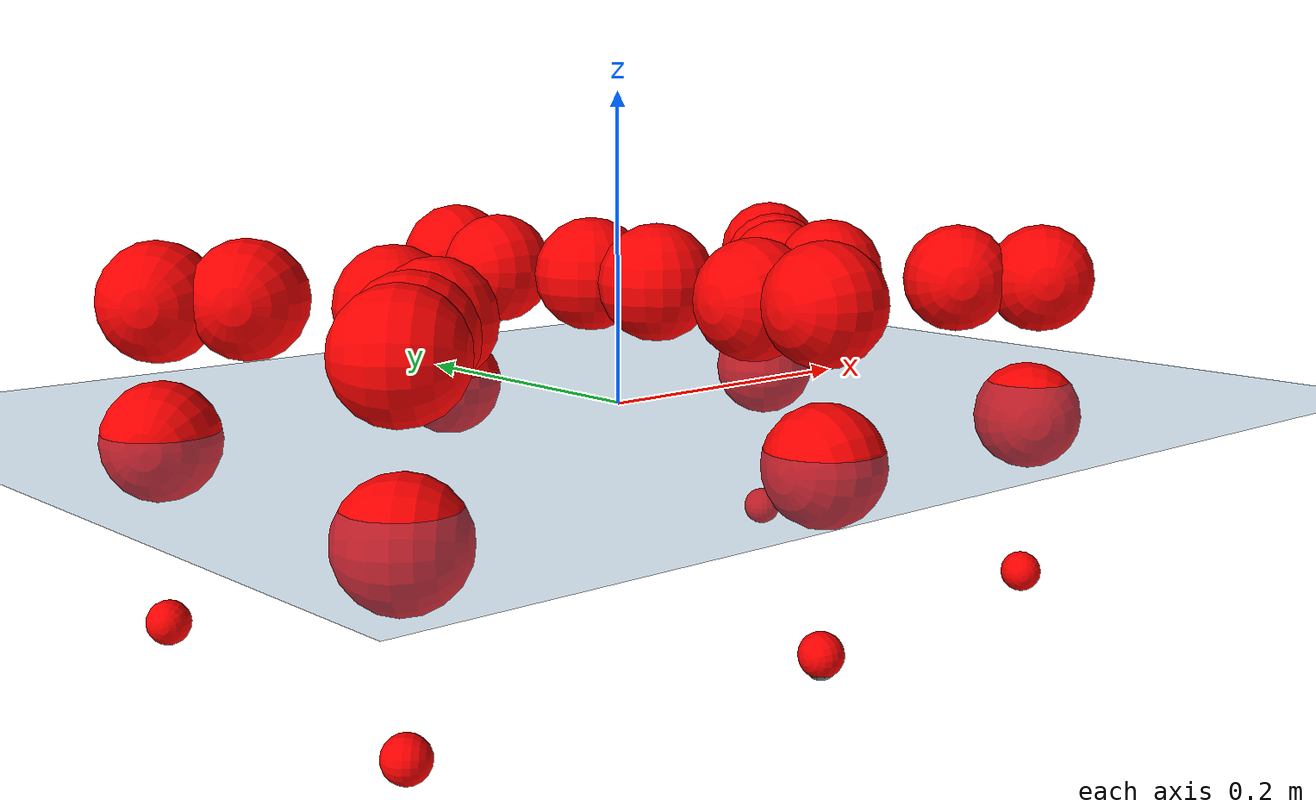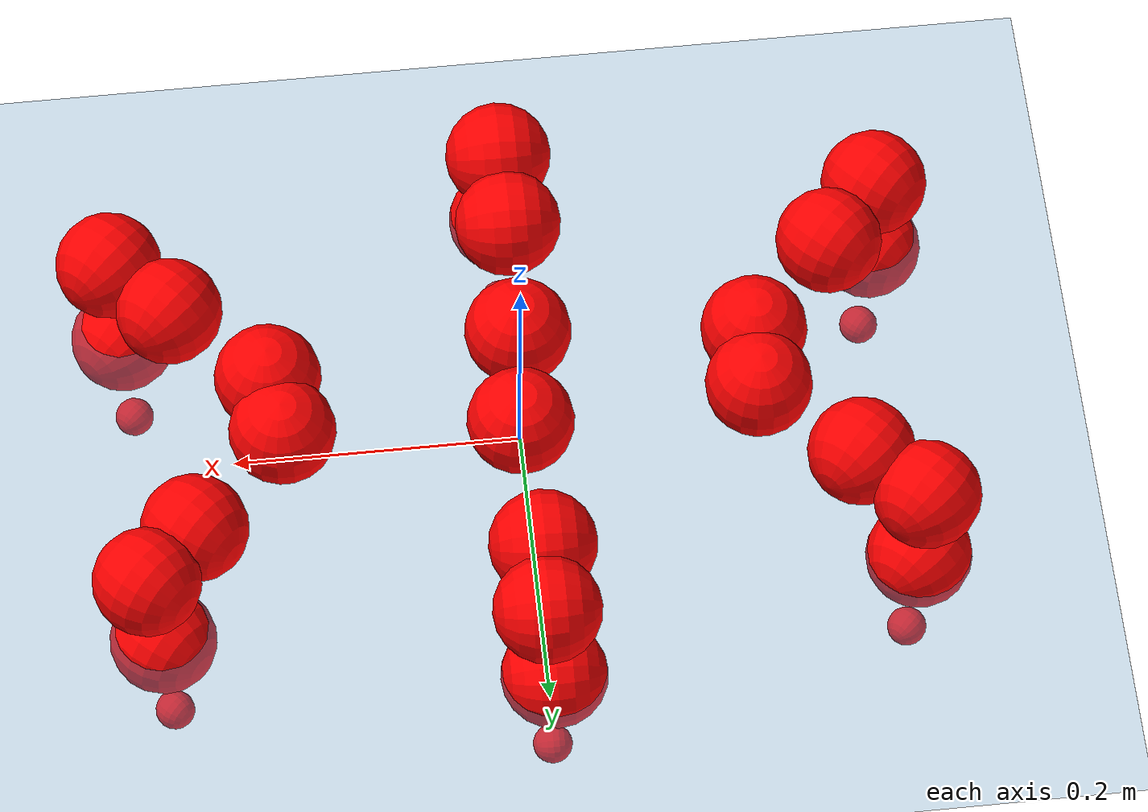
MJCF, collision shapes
<mujoco model="Golem">
  <compiler angle="radian" assetdir="assets" balanceinertia="true" inertiafromgeom="false"/>

  <option timestep="0.005" density="1.2" viscosity="2e-05"/>

  <size nkey="1"/>

  <visual>
    <quality shadowsize="8192"/>
    <map shadowclip="0.5"/>
  </visual>

  <default>
    <default class="/">
      <joint armature="0.01" damping="0.01" frictionloss="0.01"/>
      <geom contype="0" conaffinity="0" group="1" solref="-1000 -80"/>
      <site size="0.01 0.005 0.005" group="5"/>
      <general forcelimited="true" biastype="affine" gainprm="25" biasprm="0 -25 -0.5"/>
      <default class="visual">
        <geom type="mesh" group="2"/>
      </default>
      <default class="collision">
        <geom group="3"/>
      </default>
      <default class="foot">
        <geom size="0.01 0 0" condim="6" group="4" priority="1" solimp="0.015 1 0.01"/>
      </default>
      <default class="reward_collision_sphere">
        <geom group="5" rgba="1 0 0 1"/>
      </default>
    </default>
  </default>

  <asset>
    <texture type="skybox" colorspace="auto" name="//unnamed_texture_0" builtin="gradient" rgb1="0.95 0.95 0.95" rgb2="0.95 0.95 0.95" width="100" height="600"/>
    <texture type="2d" colorspace="auto" name="texplane" builtin="checker" rgb1="0.345 0.575 0.748" rgb2="0.345 0.575 0.748" markrgb="1 1 1" width="512" height="512"/>
    <material name="MatPlane" class="/" texture="texplane" texuniform="true" texrepeat="2 2" specular="0.9"/>
    <mesh name="body" class="/" file="body.stl" scale="0.001 0.001 0.001"/>
    <mesh name="coxa" class="/" file="coxa.stl" scale="0.001 0.001 0.001"/>
    <mesh name="femur" class="/" file="femur.stl" scale="0.001 0.001 0.001"/>
    <mesh name="tibia" class="/" file="tibia.stl" scale="0.001 0.001 0.001"/>
    <mesh name="tarsus" class="/" file="tarsus.stl" scale="0.001 0.001 0.001"/>
  </asset>

  <worldbody>
    <geom name="floor" class="/" size="100 100 0.125" type="plane" group="0" material="MatPlane"/>
    <light name="toplight_shadow" class="/" pos="0 0 5" dir="0.0990148 0.0990148 -0.990148" type="directional" ambient="0.04 0.04 0.04" diffuse="0.55 0.55 0.55" specular="0.12 0.12 0.12"/>
    <light name="toplight_fill" class="/" pos="0 0 5" dir="0.0990148 0.0990148 -0.990148" type="directional" castshadow="false" ambient="0.04 0.04 0.04" diffuse="0.3 0.3 0.3" specular="0.08 0.08 0.08"/>
    <body name="trunk" pos="0.00064398 -0.00508147 -0.0013494" quat="1 -0.000278471 0.000137096 0.000400177">
      <inertial pos="0.000182931 -5.93187e-05 0.00612522" quat="0.999941 0.00477762 -0.00207044 -0.00952682" mass="2.63517" diaginertia="0.0123185 0.000307559 0.0273182"/>
      <joint name="//unnamed_joint_0" type="free"/>
      <geom name="//unnamed_geom_1" class="/" pos="0 0 0.0778388" quat="1 0 0 0" type="mesh" rgba="0.9 0.9 0.9 1" mesh="body"/>
      <site name="imu" class="/" pos="0.124773 0.00949767 0.110015" size="0.00922626"/>
      <camera name="track" class="/" pos="0 -1.00381 0" quat="0.707107 0.707107 0 0" mode="trackcom"/>
      <camera name="ego_camera" class="/" pos="0.136467 0 0.121623" quat="-0.5 -0.5 0.5 0.5"/>
      <body name="coxa_RR" pos="-0.187765 -0.0480278 0.0740036" quat="0.38463 -0.00042972 -0.000694038 -0.923071">
        <inertial pos="0.000448078 0.00639234 -0.00580836" quat="0.999995 -0.00248062 0.00127352 0.00140781" mass="0.148349" diaginertia="0.0125323 0.000312258 0.0265049"/>
        <joint name="coxa_joint_RR" class="/" pos="0 0 0" axis="-0.00713328 -0.00540519 -0.99996" range="-3.20042 3.12443" armature="0.00890474" damping="0.0251746" frictionloss="0.00814335"/>
        <geom name="//unnamed_geom_2" class="/" type="mesh" rgba="0.2 0.2 0.2 1" mesh="coxa"/>
        <geom name="//unnamed_geom_3" class="reward_collision_sphere" size="0.036905" pos="-0.0314923 0 0"/>
        <body name="femur_RR" pos="0.0559958 0.00177675 0.0022235" quat="0.500254 -0.500286 0.501387 0.498067">
          <inertial pos="0.00307073 -0.000497108 -0.00159808" quat="0.999998 -0.00106102 -0.00127553 -0.000536518" mass="0.15333" diaginertia="0.0124145 0.000307025 0.0257576"/>
          <joint name="femur_joint_RR" class="/" pos="0 0 0" axis="-0.00283815 -0.0101577 -0.999944" range="-3.09913 3.11641" armature="0.010499" damping="0.0222578" frictionloss="0.00939527"/>
          <geom name="//unnamed_geom_4" class="/" type="mesh" rgba="0.9 0.9 0.9 1" mesh="femur"/>
          <geom name="//unnamed_geom_5" class="reward_collision_sphere" size="0.036905"/>
          <body name="tibia_RR" pos="2.82223e-05 -0.0572728 0.00407476" quat="-0.000203108 1 -0.000176406 0.000474561">
            <inertial pos="-0.000704765 0.00157829 0.00173494" quat="0.99999 0.00265612 0.00280101 0.00244417" mass="0.161972" diaginertia="0.0124757 0.000302523 0.0241353"/>
            <joint name="tibia_joint_RR" class="/" pos="0 0 0" axis="-0.0127038 0.00125495 0.999919" stiffness="0.000556209" range="-3.13462 3.28928" armature="0.00808026" damping="0" frictionloss="0.0103015"/>
            <geom name="//unnamed_geom_6" class="/" type="mesh" rgba="0.2 0.2 0.2 1" mesh="tibia"/>
            <geom name="//unnamed_geom_7" class="reward_collision_sphere" size="0.036905"/>
            <body name="tarsus_RR" pos="0.0946183 0.00490898 -0.000477552" quat="0.999999 0.000292856 9.62255e-05 0.00102893">
              <inertial pos="0.0602913 -0.00734794 0.00400831" quat="0.499033 0.500986 0.499802 0.500176" mass="0.142066" diaginertia="0.0120853 0.00028257 0.0245705"/>
              <joint name="tarsus_joint_RR" class="/" pos="0 0 0" axis="-0.0103341 -0.000921984 0.999946" range="-3.26219 3.13602" armature="0.00962512" damping="0.0476425" frictionloss="0.00894393"/>
              <geom name="//unnamed_geom_8" class="/" type="mesh" rgba="0.9 0.9 0.9 1" mesh="tarsus"/>
              <geom name="foot_1" class="foot" size="0.00923068" pos="0.117571 0 0" quat="0 -0.707107 0 0.707107"/>
              <geom name="//unnamed_geom_10" class="reward_collision_sphere" size="0.036905"/>
              <geom name="//unnamed_geom_11" class="reward_collision_sphere" size="0.0138394" pos="0.112847 0 0"/>
              <site name="foot_1" class="foot" pos="0.117571 0 0" quat="0 -0.707107 0 0.707107" size="0.00922626"/>
            </body>
          </body>
        </body>
      </body>
      <body name="coxa_RM" pos="-0.00321495 -0.0660849 0.0838793" quat="0.707293 6.04493e-05 -0.00019978 -0.706921">
        <inertial pos="-0.00158197 -9.36165e-05 0.00163862" quat="0.999975 -0.00119121 0.00530279 -0.00458797" mass="0.164437" diaginertia="0.0129864 0.000318895 0.0272817"/>
        <joint name="coxa_joint_RM" class="/" pos="0 0 0" axis="-4.40491e-05 0.000476035 -1" stiffness="0.028039" range="-3.17849 3.10608" armature="0.00896853" damping="0.0355103" frictionloss="0.0124895"/>
        <geom name="//unnamed_geom_12" class="/" type="mesh" rgba="0.2 0.2 0.2 1" mesh="coxa"/>
        <geom name="//unnamed_geom_13" class="reward_collision_sphere" size="0.036905" pos="-0.0314923 0 0"/>
        <body name="femur_RM" pos="0.0563704 -0.00198967 -0.00234794" quat="0.500494 -0.499224 0.499729 0.500553">
          <inertial pos="-1.16495e-05 0.000689689 -0.00317268" quat="0.999955 0.00304876 -0.00873525 0.00202912" mass="0.14842" diaginertia="0.0131814 0.000304887 0.0259357"/>
          <joint name="femur_joint_RM" class="/" pos="0 0 0" axis="-0.00975102 0.00374434 -0.999945" stiffness="0.00297338" range="-3.10315 3.15143" armature="0.00805341" damping="0.0223074" frictionloss="0.00850194"/>
          <geom name="//unnamed_geom_14" class="/" type="mesh" rgba="0.9 0.9 0.9 1" mesh="femur"/>
          <geom name="//unnamed_geom_15" class="reward_collision_sphere" size="0.036905"/>
          <body name="tibia_RM" pos="-0.00202092 -0.0546429 0.00134137" quat="-2.22811e-05 1 -0.000500751 7.44214e-05">
            <inertial pos="0.00637242 0.0050497 0.00117169" quat="0.999466 0.0195057 -0.0218047 -0.0145273" mass="0.159534" diaginertia="0.0126144 0.000322371 0.0289254"/>
            <joint name="tibia_joint_RM" class="/" pos="0 0 0" axis="-0.0075158 -0.00340812 0.999966" range="-3.10326 3.13401" armature="0.00892725" damping="0" frictionloss="0.00867352"/>
            <geom name="//unnamed_geom_16" class="/" type="mesh" rgba="0.2 0.2 0.2 1" mesh="tibia"/>
            <geom name="//unnamed_geom_17" class="reward_collision_sphere" size="0.036905"/>
            <body name="tarsus_RM" pos="0.0926449 0.00310475 0.00194687" quat="1 0.000117441 0.000500251 -0.000700098">
              <inertial pos="0.0613926 0.00367119 -0.00182392" quat="0.509341 0.494757 0.499735 0.496037" mass="0.153096" diaginertia="0.0125077 0.000301703 0.0261979"/>
              <joint name="tarsus_joint_RM" class="/" pos="0 0 0" axis="0.000498077 0.00787186 0.999969" range="-3.14489 3.10972" armature="0.0118535" damping="0" frictionloss="0.010305"/>
              <geom name="//unnamed_geom_18" class="/" type="mesh" rgba="0.9 0.9 0.9 1" mesh="tarsus"/>
              <geom name="foot_2" class="foot" size="0.0104116" pos="0.117571 0 0" quat="0 -0.707107 0 0.707107"/>
              <geom name="//unnamed_geom_20" class="reward_collision_sphere" size="0.036905"/>
              <geom name="//unnamed_geom_21" class="reward_collision_sphere" size="0.0138394" pos="0.112847 0 0"/>
              <site name="foot_2" class="foot" pos="0.117571 0 0" quat="0 -0.707107 0 0.707107" size="0.00922626"/>
            </body>
          </body>
        </body>
      </body>
      <body name="coxa_RF" pos="0.192511 -0.0424432 0.0755006" quat="0.923885 3.01499e-06 -1.30201e-05 -0.382671">
        <inertial pos="-0.00420432 -0.000473803 0.000219489" quat="0.99993 -0.00423032 -0.0102333 0.00404782" mass="0.154906" diaginertia="0.0117171 0.00032466 0.028018"/>
        <joint name="coxa_joint_RF" class="/" pos="0 0 0" axis="0.00258263 -0.00612878 -0.999978" range="-3.10782 3.09067" armature="0.00939781" damping="0.0331293" frictionloss="0.00819179"/>
        <geom name="//unnamed_geom_22" class="/" type="mesh" rgba="0.2 0.2 0.2 1" mesh="coxa"/>
        <geom name="//unnamed_geom_23" class="reward_collision_sphere" size="0.036905" pos="-0.0314923 0 0"/>
        <body name="femur_RF" pos="0.0568236 0.0018848 -0.00326434" quat="0.500416 -0.499247 0.499224 0.501111">
          <inertial pos="-0.0028637 -0.00264431 0.00342446" quat="0.99997 -0.00446254 0.00164526 0.00617581" mass="0.157067" diaginertia="0.012345 0.000281788 0.0265105"/>
          <joint name="femur_joint_RF" class="/" pos="0 0 0" axis="0.000655991 -0.00354261 -0.999994" stiffness="0.00819961" range="-3.2282 3.13607" armature="0.00813068" damping="0.0221015" frictionloss="0.00961746"/>
          <geom name="//unnamed_geom_24" class="/" type="mesh" rgba="0.9 0.9 0.9 1" mesh="femur"/>
          <geom name="//unnamed_geom_25" class="reward_collision_sphere" size="0.036905"/>
          <body name="tibia_RF" pos="-0.000488315 -0.0565377 -0.00103704" quat="-3.35975e-05 1 0.000149142 0.000123721">
            <inertial pos="0.000790549 -0.00178384 0.00163888" quat="0.999971 0.000187078 0.00519636 0.00557265" mass="0.155393" diaginertia="0.0115783 0.000322682 0.0254228"/>
            <joint name="tibia_joint_RF" class="/" pos="0 0 0" axis="0.00602131 0.00283882 0.999978" range="-3.09229 3.09598" armature="0.00933839" damping="0.00254028" frictionloss="0.0108962"/>
            <geom name="//unnamed_geom_26" class="/" type="mesh" rgba="0.2 0.2 0.2 1" mesh="tibia"/>
            <geom name="//unnamed_geom_27" class="reward_collision_sphere" size="0.036905"/>
            <body name="tarsus_RF" pos="0.0958276 -0.00521948 -0.00120748" quat="0.999996 -0.0017422 0.00195037 -0.00127556">
              <inertial pos="0.0679259 0.00616443 -0.00192012" quat="0.483668 0.508096 0.524785 0.482187" mass="0.159969" diaginertia="0.0115999 0.000337394 0.025713"/>
              <joint name="tarsus_joint_RF" class="/" pos="0 0 0" axis="-0.00569289 -0.0162334 0.999852" stiffness="0.0305811" range="-3.25652 3.0923" armature="0.00590061" damping="0.0047424" frictionloss="0.00941598"/>
              <geom name="//unnamed_geom_28" class="/" type="mesh" rgba="0.9 0.9 0.9 1" mesh="tarsus"/>
              <geom name="foot_3" class="foot" size="0.00864643" pos="0.117571 0 0" quat="0 -0.707107 0 0.707107"/>
              <geom name="//unnamed_geom_30" class="reward_collision_sphere" size="0.036905"/>
              <geom name="//unnamed_geom_31" class="reward_collision_sphere" size="0.0138394" pos="0.112847 0 0"/>
              <site name="foot_3" class="foot" pos="0.117571 0 0" quat="0 -0.707107 0 0.707107" size="0.00922626"/>
            </body>
          </body>
        </body>
      </body>
      <body name="coxa_LR" pos="-0.185374 0.0418262 0.077244" quat="0.382736 2.83053e-05 -6.67944e-05 0.923858">
        <inertial pos="-0.00143011 0.00649154 0.00240255" quat="0.999845 -0.0138953 -0.00699877 -0.00829399" mass="0.16655" diaginertia="0.0141545 0.000319179 0.0291684"/>
        <joint name="coxa_joint_LR" class="/" pos="0 0 0" axis="-0.00102558 -0.00023125 -0.999999" stiffness="0.0111792" range="-3.13745 3.01898" armature="0.0116599" damping="0.00201376" frictionloss="0.00814968"/>
        <geom name="//unnamed_geom_32" class="/" type="mesh" rgba="0.2 0.2 0.2 1" mesh="coxa"/>
        <geom name="//unnamed_geom_33" class="reward_collision_sphere" size="0.036905" pos="-0.0314923 0 0"/>
        <body name="femur_LR" pos="0.0554787 0.00073932 0.00327915" quat="0.500777 -0.500449 0.499312 0.499459">
          <inertial pos="0.00139459 -0.000489343 0.00226688" quat="0.999565 -0.0145805 0.0182077 -0.0180642" mass="0.154964" diaginertia="0.0126812 0.000307784 0.0234816"/>
          <joint name="femur_joint_LR" class="/" pos="0 0 0" axis="0.00142912 -0.00155196 0.999998" stiffness="0.0183297" range="-3.27924 3.20966" armature="0.00872641" damping="0.0254581" frictionloss="0.00814592"/>
          <geom name="//unnamed_geom_34" class="/" type="mesh" rgba="0.9 0.9 0.9 1" mesh="femur"/>
          <geom name="//unnamed_geom_35" class="reward_collision_sphere" size="0.036905"/>
          <body name="tibia_LR" pos="0.00151565 -0.0538478 0.00211091" quat="0.000316316 1 -7.29983e-07 0.000119535">
            <inertial pos="-0.00227528 0.0061122 -0.00232739" quat="0.999979 -0.000780721 0.0033017 0.00553594" mass="0.159006" diaginertia="0.0126017 0.000323217 0.0267599"/>
            <joint name="tibia_joint_LR" class="/" pos="0 0 0" axis="0.00228239 0.000411681 -0.999997" range="-3.06763 3.11748" armature="0.00971817" damping="0.0519412" frictionloss="0.00849227"/>
            <geom name="//unnamed_geom_36" class="/" type="mesh" rgba="0.2 0.2 0.2 1" mesh="tibia"/>
            <geom name="//unnamed_geom_37" class="reward_collision_sphere" size="0.036905"/>
            <body name="tarsus_LR" pos="0.0846727 0.00192213 0.00135015" quat="0.999998 -0.00135741 0.00139535 -0.00101237">
              <inertial pos="0.0577908 -0.00112667 0.00068358" quat="0.498719 0.507832 0.497819 0.495543" mass="0.151275" diaginertia="0.0129768 0.000310195 0.0270085"/>
              <joint name="tarsus_joint_LR" class="/" pos="0 0 0" axis="0.00947671 -0.0126107 -0.999876" stiffness="0.02271" range="-3.0473 3.14698" armature="0.00923815" damping="0.0242985" frictionloss="0.0115312"/>
              <geom name="//unnamed_geom_38" class="/" type="mesh" rgba="0.9 0.9 0.9 1" mesh="tarsus"/>
              <geom name="foot_4" class="foot" size="0.00947336" pos="0.117571 0 0" quat="0.707107 0 -0.707107 0"/>
              <geom name="//unnamed_geom_40" class="reward_collision_sphere" size="0.036905"/>
              <geom name="//unnamed_geom_41" class="reward_collision_sphere" size="0.0138394" pos="0.112847 0 0"/>
              <site name="foot_4" class="foot" pos="0.117571 0 0" quat="0.707107 0 -0.707107 0" size="0.00922626"/>
            </body>
          </body>
        </body>
      </body>
      <body name="coxa_LM" pos="0.00197977 0.066356 0.0828853" quat="0.707049 0.000419723 6.28646e-05 0.707165">
        <inertial pos="0.00445527 -0.00156403 0.0032013" quat="0.999996 0.00161577 0.00217374 0.000357225" mass="0.166265" diaginertia="0.0137912 0.000352589 0.0255567"/>
        <joint name="coxa_joint_LM" class="/" pos="0 0 0" axis="-0.000120958 -0.00979753 -0.999952" stiffness="0.0025025" range="-3.14583 3.13567" armature="0.00668422" damping="0.037126" frictionloss="0.0100785"/>
        <geom name="//unnamed_geom_42" class="/" type="mesh" rgba="0.2 0.2 0.2 1" mesh="coxa"/>
        <geom name="//unnamed_geom_43" class="reward_collision_sphere" size="0.036905" pos="-0.0314923 0 0"/>
        <body name="femur_LM" pos="0.0614082 0.00543316 -0.00354539" quat="0.500226 -0.499658 0.500912 0.499203">
          <inertial pos="-0.00332026 -0.000561613 -0.00510302" quat="0.999993 0.000919956 -0.00240796 0.00268512" mass="0.156805" diaginertia="0.0127805 0.000322089 0.0264954"/>
          <joint name="femur_joint_LM" class="/" pos="0 0 0" axis="-0.00325066 0.00495492 0.999982" range="-3.09016 3.20415" armature="0.00925091" damping="0.0204101" frictionloss="0.00824005"/>
          <geom name="//unnamed_geom_44" class="/" type="mesh" rgba="0.9 0.9 0.9 1" mesh="femur"/>
          <geom name="//unnamed_geom_45" class="reward_collision_sphere" size="0.036905"/>
          <body name="tibia_LM" pos="-0.00366541 -0.0511177 -0.00229534" quat="0.000257888 0.999999 0.000794087 -0.000757981">
            <inertial pos="0.00137923 0.00587215 -0.0069861" quat="0.999363 -0.0329312 -0.0020162 -0.0136032" mass="0.164296" diaginertia="0.0124476 0.00032897 0.0275843"/>
            <joint name="tibia_joint_LM" class="/" pos="0 0 0" axis="-0.0117418 -0.0101417 -0.99988" stiffness="0.0313738" range="-3.15813 3.23969" armature="0.00967923" damping="0.0187125" frictionloss="0.00944567"/>
            <geom name="//unnamed_geom_46" class="/" type="mesh" rgba="0.2 0.2 0.2 1" mesh="tibia"/>
            <geom name="//unnamed_geom_47" class="reward_collision_sphere" size="0.036905"/>
            <body name="tarsus_LM" pos="0.0907417 0.00534636 -0.00490388" quat="1 0.000279509 -5.74393e-05 -0.000380799">
              <inertial pos="0.0628187 -0.000559688 0.00415365" quat="0.487544 0.485934 0.524437 0.501134" mass="0.148844" diaginertia="0.012303 0.00033225 0.0273248"/>
              <joint name="tarsus_joint_LM" class="/" pos="0 0 0" axis="-0.0150799 -0.0163981 -0.999752" stiffness="0.0308429" range="-3.17549 3.23471" armature="0.00909137" damping="0.014875" frictionloss="0.00908801"/>
              <geom name="//unnamed_geom_48" class="/" type="mesh" rgba="0.9 0.9 0.9 1" mesh="tarsus"/>
              <geom name="foot_5" class="foot" size="0.00970746" pos="0.117571 0 0" quat="0.707107 0 -0.707107 0"/>
              <geom name="//unnamed_geom_50" class="reward_collision_sphere" size="0.036905"/>
              <geom name="//unnamed_geom_51" class="reward_collision_sphere" size="0.0138394" pos="0.112847 0 0"/>
              <site name="foot_5" class="foot" pos="0.117571 0 0" quat="0.707107 0 -0.707107 0" size="0.00922626"/>
            </body>
          </body>
        </body>
      </body>
      <body name="coxa_LF" pos="0.185764 0.0431333 0.0726557" quat="0.924133 -0.000279262 0.00258067 0.382062">
        <inertial pos="0.00190555 -0.00196244 0.000293943" quat="0.999371 0.0349346 -0.00608234 -0.000903765" mass="0.149345" diaginertia="0.0131373 0.000305006 0.0296704"/>
        <joint name="coxa_joint_LF" class="/" pos="0 0 0" axis="0.00278543 0.0090264 -0.999955" stiffness="0.0374235" range="-3.14301 3.14637" armature="0.0102906" damping="0.0174412" frictionloss="0.0102723"/>
        <geom name="//unnamed_geom_52" class="/" type="mesh" rgba="0.2 0.2 0.2 1" mesh="coxa"/>
        <geom name="//unnamed_geom_53" class="reward_collision_sphere" size="0.036905" pos="-0.0314923 0 0"/>
        <body name="femur_LF" pos="0.0612617 0.00161978 -0.00217048" quat="0.499865 -0.499967 0.500186 0.499983">
          <inertial pos="-0.00464006 -0.00160423 -0.00598366" quat="0.999987 0.004317 0.00267013 -0.00102535" mass="0.161852" diaginertia="0.0132562 0.000319015 0.0286232"/>
          <joint name="femur_joint_LF" class="/" pos="0 0 0" axis="-0.00492095 0.0061321 0.999969" range="-3.13006 2.99334" armature="0.00800172" damping="0.0298878" frictionloss="0.0100264"/>
          <geom name="//unnamed_geom_54" class="/" type="mesh" rgba="0.9 0.9 0.9 1" mesh="femur"/>
          <geom name="//unnamed_geom_55" class="reward_collision_sphere" size="0.036905"/>
          <body name="tibia_LF" pos="-0.00448078 -0.0521271 0.0036627" quat="-9.6505e-06 0.999999 -0.000436142 0.000951276">
            <inertial pos="-0.00136101 0.00231165 -0.000773032" quat="0.999992 0.00138735 -0.00212876 0.00309968" mass="0.15649" diaginertia="0.0125286 0.000325097 0.0264394"/>
            <joint name="tibia_joint_LF" class="/" pos="0 0 0" axis="0.00426753 -0.0177672 -0.999833" range="-3.15276 3.09242" armature="0.0117549" damping="0" frictionloss="0.0098648"/>
            <geom name="//unnamed_geom_56" class="/" type="mesh" rgba="0.2 0.2 0.2 1" mesh="tibia"/>
            <geom name="//unnamed_geom_57" class="reward_collision_sphere" size="0.036905"/>
            <body name="tarsus_LF" pos="0.0917802 -0.00359197 -0.00265062" quat="1 -0.000178031 0.000232224 -0.000297205">
              <inertial pos="0.0667027 0.00146341 -0.00135704" quat="0.50107 0.501145 0.500532 0.497243" mass="0.159776" diaginertia="0.0124624 0.000313869 0.0260814"/>
              <joint name="tarsus_joint_LF" class="/" pos="0 0 0" axis="-0.000701979 -0.00036331 -1" stiffness="0.0303785" range="-3.03153 3.0221" armature="0.00923333" damping="0.0174002" frictionloss="0.00834635"/>
              <geom name="//unnamed_geom_58" class="/" type="mesh" rgba="0.9 0.9 0.9 1" mesh="tarsus"/>
              <geom name="foot_6" class="foot" size="0.00793767" pos="0.117571 0 0" quat="0.707107 0 -0.707107 0"/>
              <geom name="//unnamed_geom_60" class="reward_collision_sphere" size="0.036905"/>
              <geom name="//unnamed_geom_61" class="reward_collision_sphere" size="0.0138394" pos="0.112847 0 0"/>
              <site name="foot_6" class="foot" pos="0.117571 0 0" quat="0.707107 0 -0.707107 0" size="0.00922626"/>
            </body>
          </body>
        </body>
      </body>
    </body>
  </worldbody>

  <contact>
    <pair class="/" geom1="floor" geom2="foot_1" name="//unnamed_contact_0"/>
    <pair class="/" geom1="floor" geom2="foot_2" name="//unnamed_contact_1"/>
    <pair class="/" geom1="floor" geom2="foot_3" name="//unnamed_contact_2"/>
    <pair class="/" geom1="floor" geom2="foot_4" name="//unnamed_contact_3"/>
    <pair class="/" geom1="floor" geom2="foot_5" name="//unnamed_contact_4"/>
    <pair class="/" geom1="floor" geom2="foot_6" name="//unnamed_contact_5"/>
  </contact>

  <actuator>
    <general name="coxa_joint_RR" class="/" joint="coxa_joint_RR" forcerange="-6.82873 6.82873" gainprm="21.0189" biasprm="0 -21.0189 -0.426165"/>
    <general name="femur_joint_RR" class="/" joint="femur_joint_RR" forcerange="-6.85736 6.85736" gainprm="21.0189" biasprm="0 -21.0189 -0.426165"/>
    <general name="tibia_joint_RR" class="/" joint="tibia_joint_RR" forcerange="-8.31855 8.31855" gainprm="21.0189" biasprm="0 -21.0189 -0.426165"/>
    <general name="tarsus_joint_RR" class="/" joint="tarsus_joint_RR" forcerange="-7.19253 7.19253" gainprm="21.0189" biasprm="0 -21.0189 -0.426165"/>
    <general name="coxa_joint_RM" class="/" joint="coxa_joint_RM" forcerange="-6.71407 6.71407" gainprm="21.0189" biasprm="0 -21.0189 -0.426165"/>
    <general name="femur_joint_RM" class="/" joint="femur_joint_RM" forcerange="-7.17679 7.17679" gainprm="21.0189" biasprm="0 -21.0189 -0.426165"/>
    <general name="tibia_joint_RM" class="/" joint="tibia_joint_RM" forcerange="-8.53431 8.53431" gainprm="21.0189" biasprm="0 -21.0189 -0.426165"/>
    <general name="tarsus_joint_RM" class="/" joint="tarsus_joint_RM" forcerange="-6.36008 6.36008" gainprm="21.0189" biasprm="0 -21.0189 -0.426165"/>
    <general name="coxa_joint_RF" class="/" joint="coxa_joint_RF" forcerange="-6.26786 6.26786" gainprm="21.0189" biasprm="0 -21.0189 -0.426165"/>
    <general name="femur_joint_RF" class="/" joint="femur_joint_RF" forcerange="-4.9336 4.9336" gainprm="21.0189" biasprm="0 -21.0189 -0.426165"/>
    <general name="tibia_joint_RF" class="/" joint="tibia_joint_RF" forcerange="-6.61779 6.61779" gainprm="21.0189" biasprm="0 -21.0189 -0.426165"/>
    <general name="tarsus_joint_RF" class="/" joint="tarsus_joint_RF" forcerange="-4.95659 4.95659" gainprm="21.0189" biasprm="0 -21.0189 -0.426165"/>
    <general name="coxa_joint_LR" class="/" joint="coxa_joint_LR" forcerange="-7.76042 7.76042" gainprm="21.0189" biasprm="0 -21.0189 -0.426165"/>
    <general name="femur_joint_LR" class="/" joint="femur_joint_LR" forcerange="-6.93593 6.93593" gainprm="21.0189" biasprm="0 -21.0189 -0.426165"/>
    <general name="tibia_joint_LR" class="/" joint="tibia_joint_LR" forcerange="-6.41513 6.41513" gainprm="21.0189" biasprm="0 -21.0189 -0.426165"/>
    <general name="tarsus_joint_LR" class="/" joint="tarsus_joint_LR" forcerange="-6.71717 6.71717" gainprm="21.0189" biasprm="0 -21.0189 -0.426165"/>
    <general name="coxa_joint_LM" class="/" joint="coxa_joint_LM" forcerange="-6.68285 6.68285" gainprm="21.0189" biasprm="0 -21.0189 -0.426165"/>
    <general name="femur_joint_LM" class="/" joint="femur_joint_LM" forcerange="-6.9013 6.9013" gainprm="21.0189" biasprm="0 -21.0189 -0.426165"/>
    <general name="tibia_joint_LM" class="/" joint="tibia_joint_LM" forcerange="-8.16299 8.16299" gainprm="21.0189" biasprm="0 -21.0189 -0.426165"/>
    <general name="tarsus_joint_LM" class="/" joint="tarsus_joint_LM" forcerange="-7.36352 7.36352" gainprm="21.0189" biasprm="0 -21.0189 -0.426165"/>
    <general name="coxa_joint_LF" class="/" joint="coxa_joint_LF" forcerange="-6.99449 6.99449" gainprm="21.0189" biasprm="0 -21.0189 -0.426165"/>
    <general name="femur_joint_LF" class="/" joint="femur_joint_LF" forcerange="-7.84474 7.84474" gainprm="21.0189" biasprm="0 -21.0189 -0.426165"/>
    <general name="tibia_joint_LF" class="/" joint="tibia_joint_LF" forcerange="-6.95621 6.95621" gainprm="21.0189" biasprm="0 -21.0189 -0.426165"/>
    <general name="tarsus_joint_LF" class="/" joint="tarsus_joint_LF" forcerange="-6.64344 6.64344" gainprm="21.0189" biasprm="0 -21.0189 -0.426165"/>
  </actuator>

  <sensor>
    <gyro site="imu" name="imu_angular_velocity"/>
    <velocimeter site="imu" name="imu_linear_velocity"/>
    <framelinvel objtype="site" objname="foot_1" name="foot_1_global_linear_velocity"/>
    <framelinvel objtype="site" objname="foot_2" name="foot_2_global_linear_velocity"/>
    <framelinvel objtype="site" objname="foot_3" name="foot_3_global_linear_velocity"/>
    <framelinvel objtype="site" objname="foot_4" name="foot_4_global_linear_velocity"/>
    <framelinvel objtype="site" objname="foot_5" name="foot_5_global_linear_velocity"/>
    <framelinvel objtype="site" objname="foot_6" name="foot_6_global_linear_velocity"/>
  </sensor>

  <keyframe>
    <key name="home" qpos="0 0 0.1457 1 0 0 0 0 0 0 0 0 0 0 0 0 0 0 0 0 0 0 0 0 0 0 0 0 0 0 0"/>
  </keyframe>
</mujoco>
